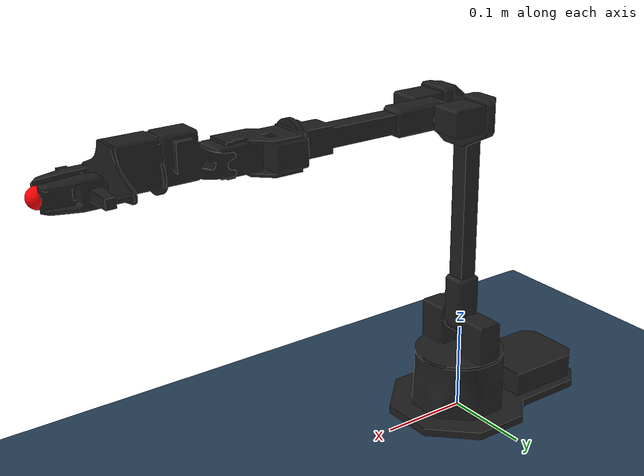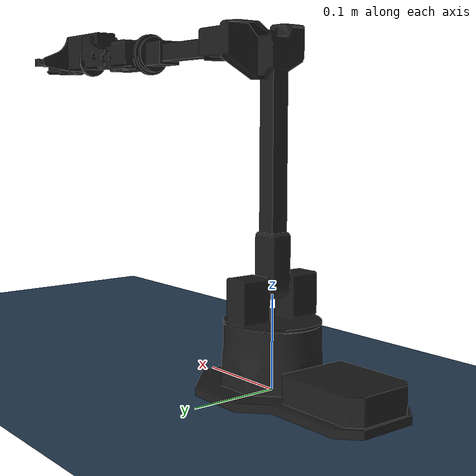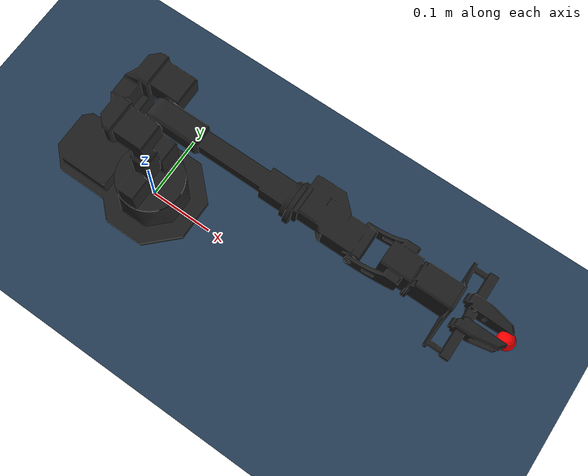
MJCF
<mujoco model="wx250s scene">
  <include file="wx250s.xml"/>
  <option gravity='0 0 -9.806' iterations='50' solver='Newton' timestep='0.002'/>

  <statistic center="0 0 0.12" extent="0.4"/>

  <visual>
    <headlight diffuse="0.6 0.6 0.6" ambient="0.3 0.3 0.3" specular="0 0 0"/>
    <rgba haze="0.15 0.25 0.35 1"/>
    <global azimuth="140" elevation="-30" offwidth="1920" offheight="1080"/>
  </visual>

  <asset>
    <texture type="skybox" builtin="gradient" rgb1="0.3 0.5 0.7" rgb2="0 0 0" width="512" height="3072"/>
    <texture type="2d" name="groundplane" builtin="checker" mark="edge" rgb1="0.2 0.3 0.4" rgb2="0.1 0.2 0.3"
      markrgb="0.8 0.8 0.8" width="300" height="300"/>
    <material name="groundplane" texture="groundplane" texuniform="true" texrepeat="5 5" reflectance="0.2"/>
  </asset>

  <worldbody>
    <light pos="0 0 1.5" dir="0 0 -1" directional="true"/>
    <geom name="floor" size="0 0 0.05" type="plane" material="groundplane"/>
    <body name="target_body" pos="0 0 0" quat="1 0 0 0">
      <site name="target" pos="0 0 0" size="0.02" rgba="0 1 0 0.4"/>
    </body>
  </worldbody>
</mujoco>

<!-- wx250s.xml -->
<mujoco model="wx250s">
  <compiler angle="radian" meshdir="assets" texturedir="assets" autolimits="true"/>

  <option integrator="implicitfast" cone="elliptic" impratio="10"/>

  <asset>
    <texture type="2d" file="interbotix_black.png"/>
    <material name="black" texture="interbotix_black"/>

    <mesh file="wx250s_1_base.stl" class="wx250s"/>
    <mesh file="wx250s_2_shoulder.stl" class="wx250s"/>
    <mesh file="wx250s_3_upper_arm.stl" class="wx250s"/>
    <mesh file="wx250s_4_upper_forearm.stl" class="wx250s"/>
    <mesh file="wx250s_5_lower_forearm.stl" class="wx250s"/>
    <mesh file="wx250s_6_wrist.stl" class="wx250s"/>
    <mesh file="wx250s_7_gripper.stl" class="wx250s"/>
    <mesh file="wx250s_8_gripper_prop.stl" class="wx250s"/>
    <mesh file="wx250s_9_gripper_bar.stl" class="wx250s"/>
    <mesh file="wx250s_10_gripper_finger.stl" class="wx250s"/>
  </asset>

  <default>
    <default class="wx250s">
      <mesh scale="0.001 0.001 0.001"/>
      <joint axis="0 1 0" frictionloss="0.1" armature="0.1"/>
      <position kp="50" inheritrange="1" dampratio="0.95" forcerange="-35 35"/>
      <default class="visual">
        <geom type="mesh" contype="0" conaffinity="0" density="0" group="2" material="black"/>
      </default>
      <default class="collision">
        <geom group="3" type="mesh"/>
        <default class="sphere_collision">
          <geom type="sphere" size="0.0006" rgba="1 0 0 1"/>
        </default>
      </default>
    </default>
  </default>

  <worldbody>
    <light mode="targetbodycom" target="wx250s/gripper_link" pos="1 0 1"/>
    <camera name="cam1" pos="1.555 -0.717 0.813" xyaxes="0.438 0.899 0.000 -0.366 0.178 0.914"/>

    <body name="wx250s/base_link" childclass="wx250s">
      <inertial pos="-0.0380446 0.000613892 0.0193354" quat="0.509292 0.490887 -0.496359 0.503269" mass="0.538736"
        diaginertia="0.00252518 0.00211519 0.000690737"/>
      <geom quat="1 0 0 1" mesh="wx250s_1_base" class="visual"/>
      <geom quat="1 0 0 1" mesh="wx250s_1_base" class="collision"/>
      <body name="wx250s/shoulder_link" pos="0 0 0.072">
        <inertial pos="2.23482e-05 4.14609e-05 0.0066287" quat="0.0130352 0.706387 0.012996 0.707586" mass="0.480879"
          diaginertia="0.000588946 0.000555655 0.000378999"/>
        <joint name="waist" axis="0 0 1" range="-3.14158 3.14158"/>
        <geom pos="0 0 -0.003" quat="1 0 0 1" mesh="wx250s_2_shoulder" class="visual"/>
        <geom pos="0 0 -0.003" quat="1 0 0 1" mesh="wx250s_2_shoulder" class="collision"/>
        <body name="wx250s/upper_arm_link" pos="0 0 0.03865">
          <inertial pos="0.0171605 2.725e-07 0.191323" quat="0.705539 0.0470667 -0.0470667 0.705539" mass="0.430811"
            diaginertia="0.00364425 0.003463 0.000399348"/>
          <joint name="shoulder" range="-1.88496 1.98968"/>
          <geom quat="1 0 0 1" mesh="wx250s_3_upper_arm" class="visual"/>
          <geom quat="1 0 0 1" mesh="wx250s_3_upper_arm" class="collision"/>
          <body name="wx250s/upper_forearm_link" pos="0.04975 0 0.25">
            <inertial pos="0.107963 0.000115876 0" quat="0.000980829 0.707106 -0.000980829 0.707106" mass="0.234589"
              diaginertia="0.000888 0.000887807 3.97035e-05"/>
            <joint name="elbow" range="-2.14675 1.6057"/>
            <geom mesh="wx250s_4_upper_forearm" class="visual"/>
            <geom mesh="wx250s_4_upper_forearm" class="collision"/>
            <body name="wx250s/lower_forearm_link" pos="0.175 0 0">
              <inertial pos="0.0374395 0.00522252 0" quat="-0.0732511 0.703302 0.0732511 0.703302" mass="0.220991"
                diaginertia="0.0001834 0.000172527 5.88633e-05"/>
              <joint name="forearm_roll" axis="1 0 0" range="-3.14158 3.14158"/>
              <geom quat="0 1 0 0" mesh="wx250s_5_lower_forearm" class="visual"/>
              <geom quat="0 1 0 0" mesh="wx250s_5_lower_forearm" class="collision"/>
              <body name="wx250s/wrist_link" pos="0.075 0 0">
                <inertial pos="0.04236 -1.0663e-05 0.010577" quat="0.608721 0.363497 -0.359175 0.606895" mass="0.084957"
                  diaginertia="3.29057e-05 3.082e-05 2.68343e-05"/>
                <joint name="wrist_angle" axis="0 1 0" range="-1.74533 2.14675"/>
                <geom quat="1 0 0 1" mesh="wx250s_6_wrist" class="visual"/>
                <geom quat="1 0 0 1" mesh="wx250s_6_wrist" class="collision"/>
                <body name="wx250s/gripper_link" pos="0.065 0 0">
                  <inertial pos="0.0325296 4.2061e-07 0.0090959" quat="0.546081 0.419626 0.62801 0.362371"
                    mass="0.110084" diaginertia="0.00307592 0.00307326 0.0030332"/>
                  <joint name="wrist_rotate" axis="1 0 0" range="-3.14158 3.14158"/>
                  <geom pos="-0.02 0 0" quat="1 0 0 1" mesh="wx250s_7_gripper" class="visual"/>
                  <geom pos="-0.02 0 0" quat="1 0 0 1" mesh="wx250s_7_gripper" class="collision"/>
                  <geom pos="-0.02 0 0" quat="1 0 0 1" mesh="wx250s_9_gripper_bar" class="visual"/>
                  <geom pos="-0.02 0 0" quat="1 0 0 1" mesh="wx250s_9_gripper_bar" class="collision"/>
                  <site name="end_effector" pos="0.108 0.0 0.0" size="0.01" rgba="1 0 0 1"/>

                  <body name="wx250s/left_finger_link" pos="0.066 0.015 0">
                    <inertial pos="0.013816 0 0" quat="0.705384 0.705384 -0.0493271 -0.0493271" mass="0.016246"
                      diaginertia="4.79509e-06 3.7467e-06 1.48651e-06"/>
                    <joint name="left_finger" axis="0 1 0" type="slide" range="0.000 0.022"/>
                    <geom pos="0 0.005 0" quat="0 0 0 -1" mesh="wx250s_10_gripper_finger" class="visual"/>
                    <geom pos="0 0.005 0" quat="0 0 0 -1" mesh="wx250s_10_gripper_finger" class="collision"/>
                    <geom name="left/left_g0" pos="0.042 -0.009 0.012" class="sphere_collision"/>
                    <geom name="left/left_g1" pos="0.042 -0.009 -0.012" class="sphere_collision"/>
                  </body>
                  <body name="wx250s/right_finger_link" pos="0.066 -0.015 0">
                    <inertial pos="0.013816 0 0" quat="0.705384 0.705384 0.0493271 0.0493271" mass="0.016246"
                      diaginertia="4.79509e-06 3.7467e-06 1.48651e-06"/>
                    <joint name="right_finger" axis="0 1 0" type="slide" range="-0.022 -0.000"/>
                    <geom pos="0 -0.005 0" quat="0 0 1 0" mesh="wx250s_10_gripper_finger" class="visual"/>
                    <geom pos="0 -0.005 0" quat="0 0 1 0" mesh="wx250s_10_gripper_finger" class="collision"/>
                    <geom name="right/right_g0" pos="0.042 0.009 0.012" class="sphere_collision"/>
                    <geom name="right/right_g1" pos="0.042 0.009 -0.012" class="sphere_collision"/>

                  </body>
                </body>
              </body>
            </body>
          </body>
        </body>
      </body>
    </body>
  </worldbody>

  <contact>
    <exclude body1="wx250s/base_link" body2="wx250s/shoulder_link"/>
  </contact>

  <equality>
    <joint joint1="left_finger" joint2="right_finger" polycoef="0 -1 0 0 0"/>
  </equality>

  <actuator>
    <position class="wx250s" name="waist" joint="waist"/>
    <position class="wx250s" name="shoulder" joint="shoulder"/>
    <position class="wx250s" name="elbow" joint="elbow"/>
    <position class="wx250s" name="forearm_roll" joint="forearm_roll"/>
    <position class="wx250s" name="wrist_angle" joint="wrist_angle"/>
    <position class="wx250s" name="wrist_rotate" joint="wrist_rotate"/>
    <position class="wx250s" name="gripper" joint="left_finger" kp="200"/>
  </actuator>

  <sensor>
    <jointpos  name="waist_pos" joint="waist"/>
    <jointpos  name="shoulder_pos" joint="shoulder"/>
    <jointpos  name="elbow_pos" joint="elbow"/>
    <jointpos  name="forearm_roll_pos" joint="forearm_roll"/>
    <jointpos  name="wrist_angle_pos" joint="wrist_angle"/>
    <jointpos  name="wrist_rotate_pos" joint="wrist_rotate"/>
    <jointpos  name="gripper_pos" joint="left_finger"/>

    <jointvel name="waist_vel"     joint="waist"/>
    <jointvel name="shoulder_vel"   joint="shoulder"/>
    <jointvel name="elbow_vel"    joint="elbow"/>
    <jointvel name="forearm_roll_vel" joint="forearm_roll"/>
    <jointvel name="wrist_angle_vel" joint="wrist_angle"/>
    <jointvel name="wrist_rotate_vel" joint="wrist_rotate"/>
    <jointvel name="gripper_vel" joint="left_finger"/>

    <jointactuatorfrc name="waist_frc" joint="waist"/>
    <jointactuatorfrc name="shoulder_frc" joint="shoulder"/>
    <jointactuatorfrc name="elbow_frc" joint="elbow"/>
    <jointactuatorfrc name="forearm_roll_frc" joint="forearm_roll"/>
    <jointactuatorfrc name="wrist_angle_frc" joint="wrist_angle"/>
    <jointactuatorfrc name="wrist_rotate_frc" joint="wrist_rotate"/>
    <jointactuatorfrc name="gripper_frc" joint="left_finger"/>

  </sensor>

  <keyframe>
    <key name="home" qpos="0 -0.96 1.16 0 -0.3 0 0.0 -0.0" ctrl="0 -0.96 1.16 0 -0.3 0 0.0"/>
  </keyframe>
</mujoco>
